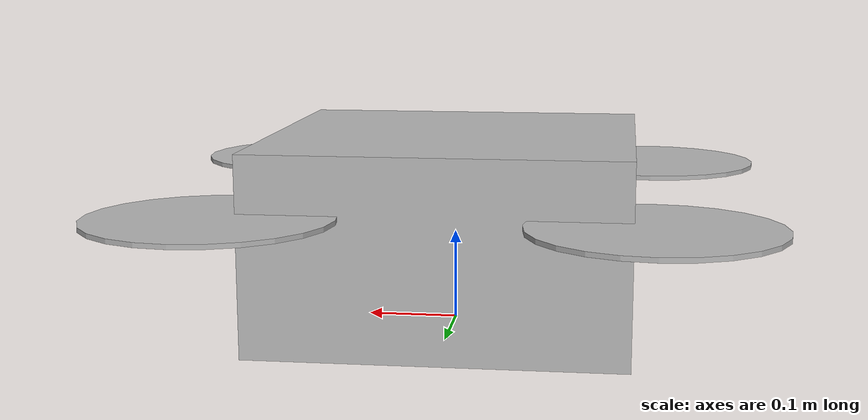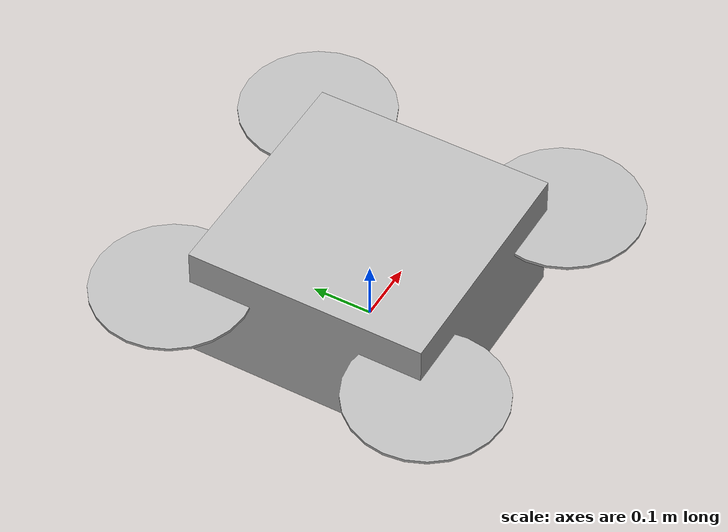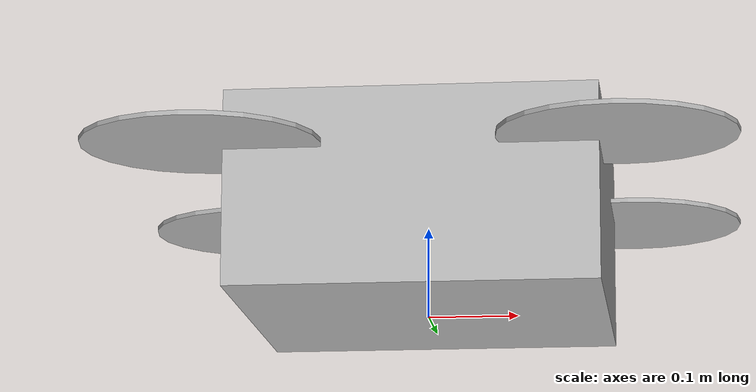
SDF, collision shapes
<!-- DO NOT EDIT: Generated from iris.sdf.jinja -->
<sdf version='1.6'>
  <model name='iris'>
    <link name='base_link'>
      <pose>0 0 0 0 0 0</pose>
      <inertial>
        <pose>0 0 0 0 0 0</pose>
        <mass>1.5</mass>
        <inertia>
          <ixx>0.029125</ixx>
          <ixy>0</ixy>
          <ixz>0</ixz>
          <iyy>0.029125</iyy>
          <iyz>0</iyz>
          <izz>0.055225</izz>
        </inertia>
      </inertial>
      <collision name='base_link_inertia_collision'>
        <pose>0 0 0.1065 0 0 0</pose>
        <geometry>
          <box>
              <size>0.4 0.4 0.213</size>
          </box>
        </geometry>
        <surface>
          <contact>
            <ode>
              <min_depth>0.001</min_depth>
              <max_vel>0</max_vel>
            </ode>
          </contact>
          <friction>
            <ode/>
          </friction>
        </surface>
      </collision>
      <visual name='base_link_inertia_visual'>
        <pose>0 0 0 0 0 0</pose>
        <geometry>
          <mesh>
            <scale>7.1 7.1 7.1</scale>
              <uri>model://iris_crazyflie/meshes/cf2_assembly.dae</uri>
          </mesh>
        </geometry>

      </visual>
      <gravity>1</gravity>
      <velocity_decay/>
    </link>
    <link name='/imu_link'>
      <pose>0 0 0 0 0 0</pose>
      <inertial>
        <pose>0 0 0 0 0 0</pose>
        <mass>0.015</mass>
        <inertia>
          <ixx>1e-05</ixx>
          <ixy>0</ixy>
          <ixz>0</ixz>
          <iyy>1e-05</iyy>
          <iyz>0</iyz>
          <izz>1e-05</izz>
        </inertia>
      </inertial>
    </link>
    <joint name='/imu_joint' type='revolute'>
      <child>/imu_link</child>
      <parent>base_link</parent>
      <axis>
        <xyz>1 0 0</xyz>
        <limit>
          <lower>0</lower>
          <upper>0</upper>
          <effort>0</effort>
          <velocity>0</velocity>
        </limit>
        <dynamics>
          <spring_reference>0</spring_reference>
          <spring_stiffness>0</spring_stiffness>
        </dynamics>
        <use_parent_model_frame>1</use_parent_model_frame>
      </axis>
    </joint>
    <link name='rotor_0'>
      <pose>0.22 -0.22 0.15 0 0 0</pose>
      <inertial>
        <pose>0 0 0 0 0 0</pose>
        <mass>0.005</mass>
        <inertia>
          <ixx>9.75e-07</ixx>
          <ixy>0</ixy>
          <ixz>0</ixz>
          <iyy>0.000273104</iyy>
          <iyz>0</iyz>
          <izz>0.000274004</izz>
        </inertia>
      </inertial>
      <collision name='rotor_0_collision'>
        <pose>0 0 0 0 0 0</pose>
        <geometry>
          <cylinder>
            <length>0.005</length>
            <radius>0.128</radius>
          </cylinder>
        </geometry>
        <surface>
          <contact>
            <ode/>
          </contact>
          <friction>
            <ode/>
          </friction>
        </surface>
      </collision>
      <visual name='rotor_0_visual'>
        <pose>0 0 0 0 0 0</pose>
        <geometry>
          <mesh>
            <scale>7.1 7.1 7.1</scale>
            <uri>model://iris_crazyflie/meshes/ccw_prop.dae</uri>
          </mesh>
        </geometry>

      </visual>
      <gravity>1</gravity>
      <velocity_decay/>
    </link>
    <joint name='rotor_0_joint' type='revolute'>
      <child>rotor_0</child>
      <parent>base_link</parent>
      <axis>
        <xyz>0 0 1</xyz>
        <limit>
          <lower>-1e+16</lower>
          <upper>1e+16</upper>
        </limit>
        <dynamics>
          <spring_reference>0</spring_reference>
          <spring_stiffness>0</spring_stiffness>
        </dynamics>
        <use_parent_model_frame>1</use_parent_model_frame>
      </axis>
    </joint>
    <link name='rotor_1'>
      <pose>-0.22 0.22 0.15 0 0 0</pose>
      <inertial>
        <pose>0 0 0 0 0 0</pose>
        <mass>0.005</mass>
        <inertia>
          <ixx>9.75e-07</ixx>
          <ixy>0</ixy>
          <ixz>0</ixz>
          <iyy>0.000273104</iyy>
          <iyz>0</iyz>
          <izz>0.000274004</izz>
        </inertia>
      </inertial>
      <collision name='rotor_1_collision'>
        <pose>0 0 0 0 0 0</pose>
        <geometry>
          <cylinder>
            <length>0.005</length>
            <radius>0.128</radius>
          </cylinder>
        </geometry>
        <surface>
          <contact>
            <ode/>
          </contact>
          <friction>
            <ode/>
          </friction>
        </surface>
      </collision>
      <visual name='rotor_1_visual'>
        <pose>0 0 0 0 0 0</pose>
        <geometry>
          <mesh>
            <scale>7.1 7.1 7.1</scale>
            <uri>model://iris_crazyflie/meshes/ccw_prop.dae</uri>
          </mesh>
        </geometry>

      </visual>
      <gravity>1</gravity>
      <velocity_decay/>
    </link>
    <joint name='rotor_1_joint' type='revolute'>
      <child>rotor_1</child>
      <parent>base_link</parent>
      <axis>
        <xyz>0 0 1</xyz>
        <limit>
          <lower>-1e+16</lower>
          <upper>1e+16</upper>
        </limit>
        <dynamics>
          <spring_reference>0</spring_reference>
          <spring_stiffness>0</spring_stiffness>
        </dynamics>
        <use_parent_model_frame>1</use_parent_model_frame>
      </axis>
    </joint>
    <link name='rotor_2'>
      <pose>0.22 0.22 0.15 0 0 0</pose>
      <inertial>
        <pose>0 0 0 0 0 0</pose>
        <mass>0.005</mass>
        <inertia>
          <ixx>9.75e-07</ixx>
          <ixy>0</ixy>
          <ixz>0</ixz>
          <iyy>0.000273104</iyy>
          <iyz>0</iyz>
          <izz>0.000274004</izz>
        </inertia>
      </inertial>
      <collision name='rotor_2_collision'>
        <pose>0 0 0 0 0 0</pose>
        <geometry>
          <cylinder>
            <length>0.005</length>
            <radius>0.128</radius>
          </cylinder>
        </geometry>
        <surface>
          <contact>
            <ode/>
          </contact>
          <friction>
            <ode/>
          </friction>
        </surface>
      </collision>
      <visual name='rotor_2_visual'>
        <pose>0 0 0 0 0 0</pose>
        <geometry>
          <mesh>
            <scale>7.1 7.1 7.1</scale>
            <uri>model://iris_crazyflie/meshes/cw_prop.dae</uri>
          </mesh>
        </geometry>

      </visual>
      <gravity>1</gravity>
      <velocity_decay/>
    </link>
    <joint name='rotor_2_joint' type='revolute'>
      <child>rotor_2</child>
      <parent>base_link</parent>
      <axis>
        <xyz>0 0 1</xyz>
        <limit>
          <lower>-1e+16</lower>
          <upper>1e+16</upper>
        </limit>
        <dynamics>
          <spring_reference>0</spring_reference>
          <spring_stiffness>0</spring_stiffness>
        </dynamics>
        <use_parent_model_frame>1</use_parent_model_frame>
      </axis>
    </joint>
    <link name='rotor_3'>
      <pose>-0.22 -0.22 0.15 0 0 0</pose>
      <inertial>
        <pose>0 0 0 0 0 0</pose>
        <mass>0.005</mass>
        <inertia>
          <ixx>9.75e-07</ixx>
          <ixy>0</ixy>
          <ixz>0</ixz>
          <iyy>0.000273104</iyy>
          <iyz>0</iyz>
          <izz>0.000274004</izz>
        </inertia>
      </inertial>
      <collision name='rotor_3_collision'>
        <pose>0 0 0 0 0 0</pose>
        <geometry>
          <cylinder>
            <length>0.005</length>
            <radius>0.128</radius>
          </cylinder>
        </geometry>
        <surface>
          <contact>
            <ode/>
          </contact>
          <friction>
            <ode/>
          </friction>
        </surface>
      </collision>
      <visual name='rotor_3_visual'>
        <pose>0 0 0 0 0 0</pose>
        <geometry>
          <mesh>
            <scale>7.1 7.1 7.1</scale>
            <uri>model://iris_crazyflie/meshes/cw_prop.dae</uri>
          </mesh>
        </geometry>

      </visual>
      <gravity>1</gravity>
      <velocity_decay/>
    </link>
    <joint name='rotor_3_joint' type='revolute'>
      <child>rotor_3</child>
      <parent>base_link</parent>
      <axis>
        <xyz>0 0 1</xyz>
        <limit>
          <lower>-1e+16</lower>
          <upper>1e+16</upper>
        </limit>
        <dynamics>
          <spring_reference>0</spring_reference>
          <spring_stiffness>0</spring_stiffness>
        </dynamics>
        <use_parent_model_frame>1</use_parent_model_frame>
      </axis>
    </joint>
    <plugin name='rosbag' filename='libgazebo_multirotor_base_plugin.so'>
      <robotNamespace/>
      <linkName>base_link</linkName>
      <rotorVelocitySlowdownSim>10</rotorVelocitySlowdownSim>
    </plugin>
    <plugin name='front_right_motor_model' filename='libgazebo_motor_model.so'>
      <robotNamespace/>
      <jointName>rotor_0_joint</jointName>
      <linkName>rotor_0</linkName>
      <turningDirection>ccw</turningDirection>
      <timeConstantUp>0.0125</timeConstantUp>
      <timeConstantDown>0.025</timeConstantDown>
      <maxRotVelocity>1100</maxRotVelocity>
      <motorConstant>5.84e-06</motorConstant>
      <momentConstant>0.06</momentConstant>
      <commandSubTopic>/gazebo/command/motor_speed</commandSubTopic>
      <motorNumber>0</motorNumber>
      <rotorDragCoefficient>0.000175</rotorDragCoefficient>
      <rollingMomentCoefficient>1e-06</rollingMomentCoefficient>
      <motorSpeedPubTopic>/motor_speed/0</motorSpeedPubTopic>
      <rotorVelocitySlowdownSim>10</rotorVelocitySlowdownSim>
    </plugin>
    <plugin name='back_left_motor_model' filename='libgazebo_motor_model.so'>
      <robotNamespace/>
      <jointName>rotor_1_joint</jointName>
      <linkName>rotor_1</linkName>
      <turningDirection>ccw</turningDirection>
      <timeConstantUp>0.0125</timeConstantUp>
      <timeConstantDown>0.025</timeConstantDown>
      <maxRotVelocity>1100</maxRotVelocity>
      <motorConstant>5.84e-06</motorConstant>
      <momentConstant>0.06</momentConstant>
      <commandSubTopic>/gazebo/command/motor_speed</commandSubTopic>
      <motorNumber>1</motorNumber>
      <rotorDragCoefficient>0.000175</rotorDragCoefficient>
      <rollingMomentCoefficient>1e-06</rollingMomentCoefficient>
      <motorSpeedPubTopic>/motor_speed/1</motorSpeedPubTopic>
      <rotorVelocitySlowdownSim>10</rotorVelocitySlowdownSim>
    </plugin>
    <plugin name='front_left_motor_model' filename='libgazebo_motor_model.so'>
      <robotNamespace/>
      <jointName>rotor_2_joint</jointName>
      <linkName>rotor_2</linkName>
      <turningDirection>cw</turningDirection>
      <timeConstantUp>0.0125</timeConstantUp>
      <timeConstantDown>0.025</timeConstantDown>
      <maxRotVelocity>1100</maxRotVelocity>
      <motorConstant>5.84e-06</motorConstant>
      <momentConstant>0.06</momentConstant>
      <commandSubTopic>/gazebo/command/motor_speed</commandSubTopic>
      <motorNumber>2</motorNumber>
      <rotorDragCoefficient>0.000175</rotorDragCoefficient>
      <rollingMomentCoefficient>1e-06</rollingMomentCoefficient>
      <motorSpeedPubTopic>/motor_speed/2</motorSpeedPubTopic>
      <rotorVelocitySlowdownSim>10</rotorVelocitySlowdownSim>
    </plugin>
    <plugin name='back_right_motor_model' filename='libgazebo_motor_model.so'>
      <robotNamespace/>
      <jointName>rotor_3_joint</jointName>
      <linkName>rotor_3</linkName>
      <turningDirection>cw</turningDirection>
      <timeConstantUp>0.0125</timeConstantUp>
      <timeConstantDown>0.025</timeConstantDown>
      <maxRotVelocity>1100</maxRotVelocity>
      <motorConstant>5.84e-06</motorConstant>
      <momentConstant>0.06</momentConstant>
      <commandSubTopic>/gazebo/command/motor_speed</commandSubTopic>
      <motorNumber>3</motorNumber>
      <rotorDragCoefficient>0.000175</rotorDragCoefficient>
      <rollingMomentCoefficient>1e-06</rollingMomentCoefficient>
      <motorSpeedPubTopic>/motor_speed/3</motorSpeedPubTopic>
      <rotorVelocitySlowdownSim>10</rotorVelocitySlowdownSim>
    </plugin>
    <include>
      <uri>model://gps_cp</uri>
      <pose>0.1 0 0 0 0 0</pose>
      <name>gps0</name>
    </include>
    <joint name='gps0_joint' type='fixed'>
      <child>gps0::link</child>
      <parent>base_link</parent>
    </joint>
    <plugin name='groundtruth_plugin' filename='libgazebo_groundtruth_plugin.so'>
      <robotNamespace/>
    </plugin>
    <plugin name='magnetometer_plugin' filename='libgazebo_magnetometer_plugin.so'>
      <robotNamespace/>
      <pubRate>100</pubRate>
      <noiseDensity>0.0004</noiseDensity>
      <randomWalk>6.4e-06</randomWalk>
      <biasCorrelationTime>600</biasCorrelationTime>
      <magTopic>/mag</magTopic>
    </plugin>
    <plugin name='barometer_plugin' filename='libgazebo_barometer_plugin.so'>
      <robotNamespace/>
      <pubRate>50</pubRate>
      <baroTopic>/baro</baroTopic>
      <baroDriftPaPerSec>0</baroDriftPaPerSec>
    </plugin>
    <plugin name='mavlink_interface' filename='libgazebo_mavlink_interface.so'>
      <robotNamespace/>
      <imuSubTopic>/imu</imuSubTopic>
      <magSubTopic>/mag</magSubTopic>
      <baroSubTopic>/baro</baroSubTopic>
      <mavlink_addr>INADDR_ANY</mavlink_addr>
      <mavlink_tcp_port>4560</mavlink_tcp_port>
      <mavlink_udp_port>14560</mavlink_udp_port>
      <serialEnabled>0</serialEnabled>
      <serialDevice>/dev/ttyACM0</serialDevice>
      <baudRate>921600</baudRate>
      <qgc_addr>INADDR_ANY</qgc_addr>
      <qgc_udp_port>14550</qgc_udp_port>
      <sdk_addr>INADDR_ANY</sdk_addr>
      <sdk_udp_port>14540</sdk_udp_port>
      <hil_mode>0</hil_mode>
      <hil_state_level>0</hil_state_level>
      <send_vision_estimation>0</send_vision_estimation>
      <send_odometry>1</send_odometry>
      <enable_lockstep>1</enable_lockstep>
      <use_tcp>1</use_tcp>
      <motorSpeedCommandPubTopic>/gazebo/command/motor_speed</motorSpeedCommandPubTopic>
      <control_channels>
        <channel name='rotor1'>
          <input_index>0</input_index>
          <input_offset>0</input_offset>
          <input_scaling>1000</input_scaling>
          <zero_position_disarmed>0</zero_position_disarmed>
          <zero_position_armed>100</zero_position_armed>
          <joint_control_type>velocity</joint_control_type>
        </channel>
        <channel name='rotor2'>
          <input_index>1</input_index>
          <input_offset>0</input_offset>
          <input_scaling>1000</input_scaling>
          <zero_position_disarmed>0</zero_position_disarmed>
          <zero_position_armed>100</zero_position_armed>
          <joint_control_type>velocity</joint_control_type>
        </channel>
        <channel name='rotor3'>
          <input_index>2</input_index>
          <input_offset>0</input_offset>
          <input_scaling>1000</input_scaling>
          <zero_position_disarmed>0</zero_position_disarmed>
          <zero_position_armed>100</zero_position_armed>
          <joint_control_type>velocity</joint_control_type>
        </channel>
        <channel name='rotor4'>
          <input_index>3</input_index>
          <input_offset>0</input_offset>
          <input_scaling>1000</input_scaling>
          <zero_position_disarmed>0</zero_position_disarmed>
          <zero_position_armed>100</zero_position_armed>
          <joint_control_type>velocity</joint_control_type>
        </channel>
        <channel name='rotor5'>
          <input_index>4</input_index>
          <input_offset>1</input_offset>
          <input_scaling>324.6</input_scaling>
          <zero_position_disarmed>0</zero_position_disarmed>
          <zero_position_armed>0</zero_position_armed>
          <joint_control_type>velocity</joint_control_type>
          <joint_control_pid>
            <p>0.1</p>
            <i>0</i>
            <d>0</d>
            <iMax>0.0</iMax>
            <iMin>0.0</iMin>
            <cmdMax>2</cmdMax>
            <cmdMin>-2</cmdMin>
          </joint_control_pid>
          <joint_name>zephyr_delta_wing::propeller_joint</joint_name>
        </channel>
        <channel name='rotor6'>
          <input_index>5</input_index>
          <input_offset>0</input_offset>
          <input_scaling>0.524</input_scaling>
          <zero_position_disarmed>0</zero_position_disarmed>
          <zero_position_armed>0</zero_position_armed>
          <joint_control_type>position</joint_control_type>
          <joint_name>zephyr_delta_wing::flap_left_joint</joint_name>
          <joint_control_pid>
            <p>10.0</p>
            <i>0</i>
            <d>0</d>
            <iMax>0</iMax>
            <iMin>0</iMin>
            <cmdMax>20</cmdMax>
            <cmdMin>-20</cmdMin>
          </joint_control_pid>
        </channel>
        <channel name='rotor7'>
          <input_index>6</input_index>
          <input_offset>0</input_offset>
          <input_scaling>0.524</input_scaling>
          <zero_position_disarmed>0</zero_position_disarmed>
          <zero_position_armed>0</zero_position_armed>
          <joint_control_type>position</joint_control_type>
          <joint_name>zephyr_delta_wing::flap_right_joint</joint_name>
          <joint_control_pid>
            <p>10.0</p>
            <i>0</i>
            <d>0</d>
            <iMax>0</iMax>
            <iMin>0</iMin>
            <cmdMax>20</cmdMax>
            <cmdMin>-20</cmdMin>
          </joint_control_pid>
        </channel>
        <channel name='rotor8'>
          <input_index>7</input_index>
          <input_offset>0</input_offset>
          <input_scaling>0.524</input_scaling>
          <zero_position_disarmed>0</zero_position_disarmed>
          <zero_position_armed>0</zero_position_armed>
          <joint_control_type>position</joint_control_type>
        </channel>
      </control_channels>
    </plugin>
    <static>0</static>
    <plugin name='rotors_gazebo_imu_plugin' filename='libgazebo_imu_plugin.so'>
      <robotNamespace/>
      <linkName>/imu_link</linkName>
      <imuTopic>/imu</imuTopic>
      <gyroscopeNoiseDensity>0.00018665</gyroscopeNoiseDensity>
      <gyroscopeRandomWalk>3.8785e-05</gyroscopeRandomWalk>
      <gyroscopeBiasCorrelationTime>1000.0</gyroscopeBiasCorrelationTime>
      <gyroscopeTurnOnBiasSigma>0.0087</gyroscopeTurnOnBiasSigma>
      <accelerometerNoiseDensity>0.00186</accelerometerNoiseDensity>
      <accelerometerRandomWalk>0.006</accelerometerRandomWalk>
      <accelerometerBiasCorrelationTime>300.0</accelerometerBiasCorrelationTime>
      <accelerometerTurnOnBiasSigma>0.196</accelerometerTurnOnBiasSigma>
    </plugin>
  </model>
</sdf>

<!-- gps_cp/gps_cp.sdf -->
<sdf version="1.6">
  <model name="gps">
    <link name="link">
      <pose>0 0 0 0 0 0</pose>
      <inertial>
        <pose>0 0 0 0 0 0</pose>
        <mass>0.015</mass>
        <inertia>
          <ixx>1e-05</ixx>
          <ixy>0</ixy>
          <ixz>0</ixz>
          <iyy>1e-05</iyy>
          <iyz>0</iyz>
          <izz>1e-05</izz>
        </inertia>
      </inertial>

      <sensor name="gps" type="gps">
        <pose>0 0 0 0 0 0</pose>
        <update_rate>5.0</update_rate>
        <always_on>true</always_on>
        <visualize>false</visualize>
        <!-- GpsSensor noise currently not used -->
        <plugin name="gps_plugin" filename="libgazebo_gps_plugin.so">
          <robotNamespace></robotNamespace>
          <gpsNoise>true</gpsNoise>
          <gpsXYRandomWalk>2.0</gpsXYRandomWalk>
          <gpsZRandomWalk>4.0</gpsZRandomWalk>
          <gpsXYNoiseDensity>2.0e-4</gpsXYNoiseDensity>
          <gpsZNoiseDensity>4.0e-4</gpsZNoiseDensity>
          <gpsVXYNoiseDensity>0.2</gpsVXYNoiseDensity>
          <gpsVZNoiseDensity>0.4</gpsVZNoiseDensity>
        </plugin>
      </sensor>
    </link>
  </model>
</sdf>
